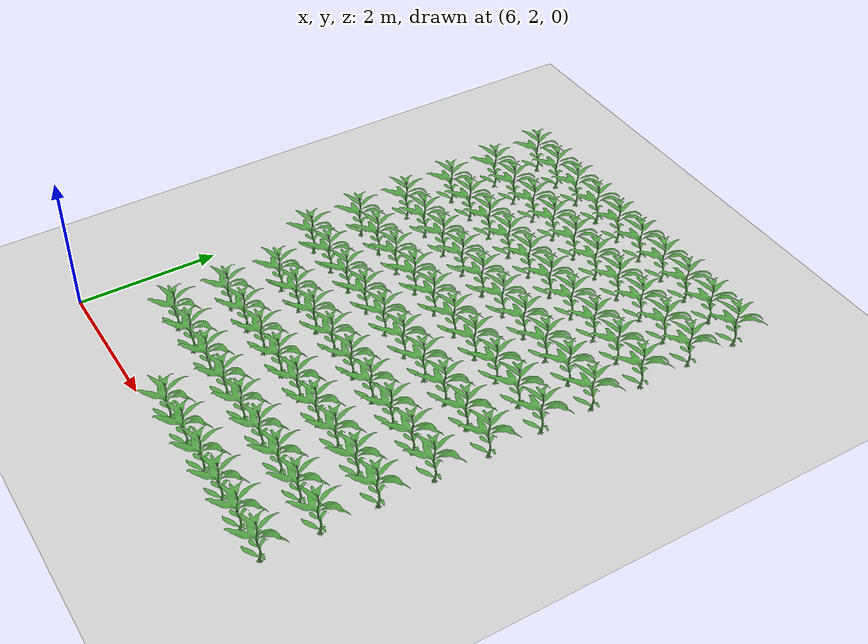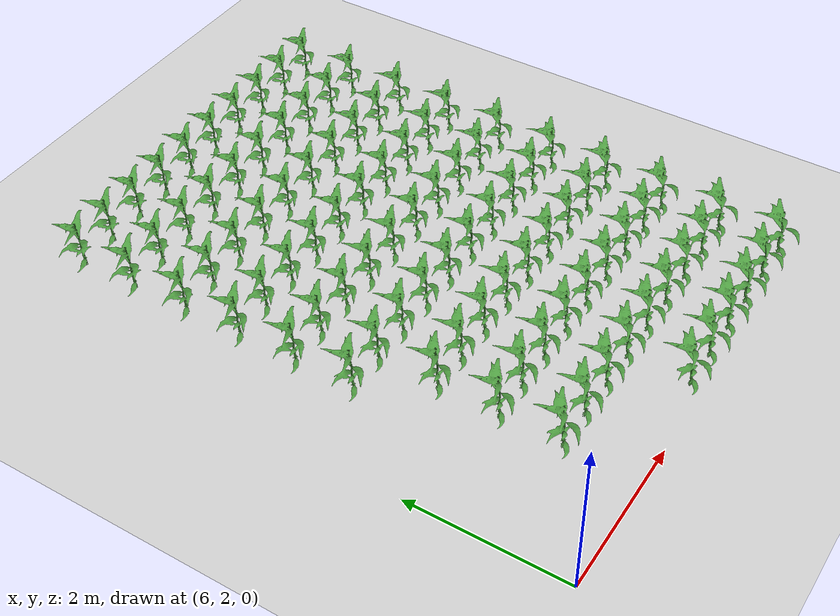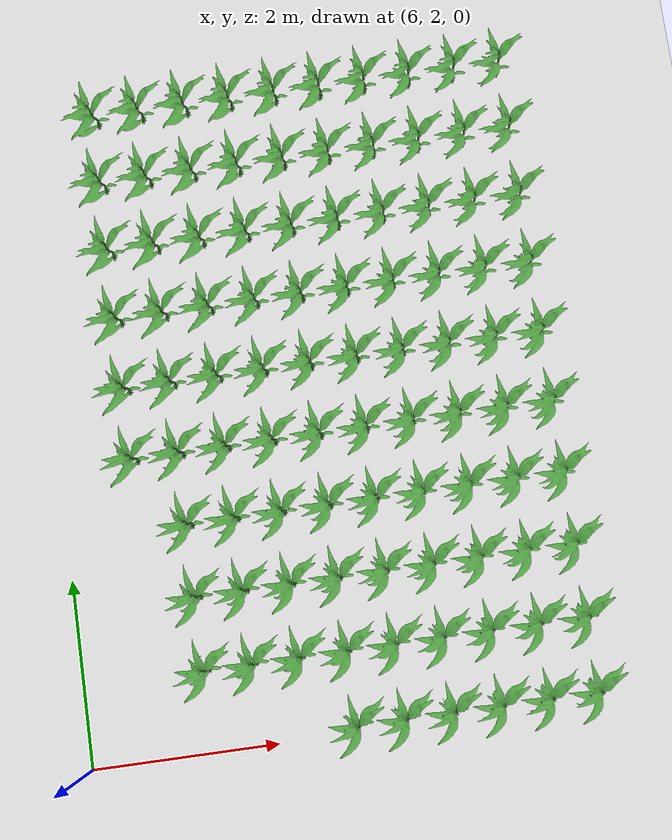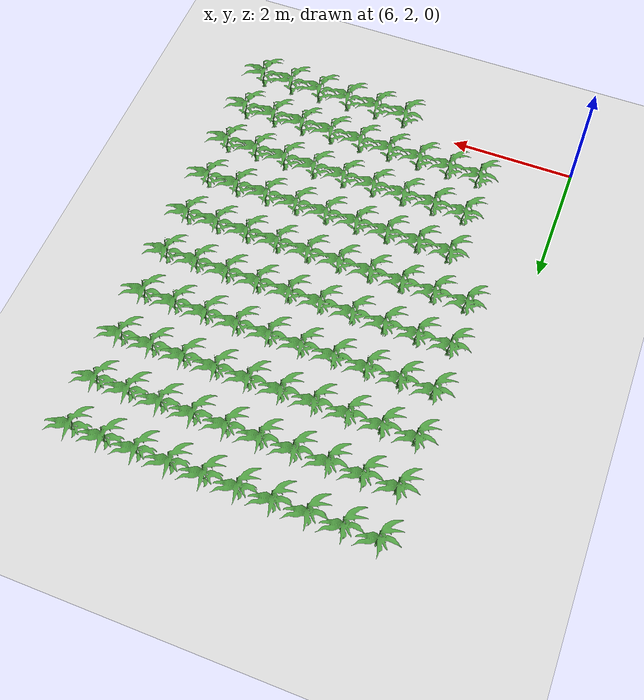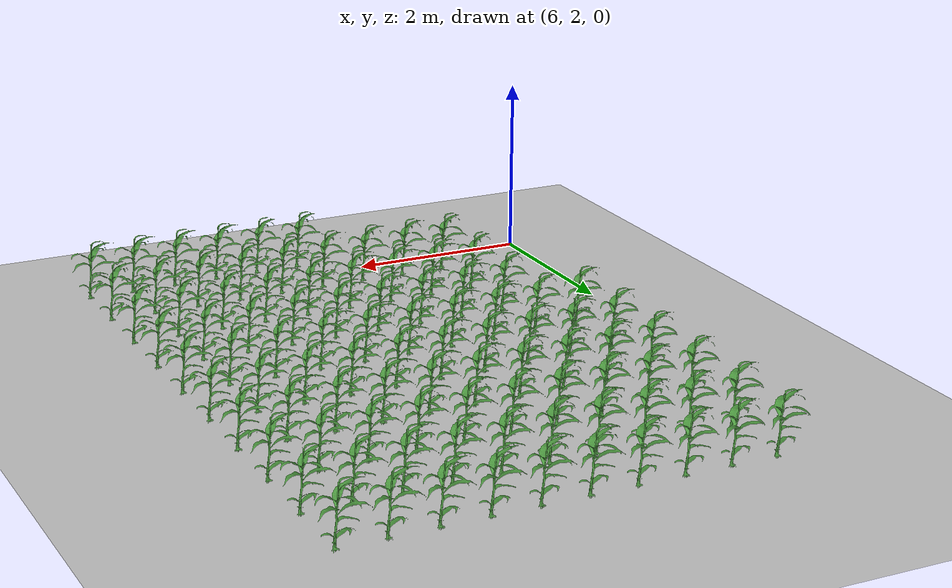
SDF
<sdf version="1.7">
 <world name="default">
  <model name="ground_plane">
   <static>1</static>
   <link name="link">
    <collision name="collision">
     <geometry><plane><normal>0 0 1</normal><size>100 100</size></plane></geometry>
     <surface>
      <contact><collide_bitmask>65535</collide_bitmask></contact>
      <friction><ode><mu>100</mu><mu2>50</mu2></ode></friction>
     </surface>
    </collision>
    <visual name="visual">
     <cast_shadows>0</cast_shadows>
     <geometry><plane><normal>0 0 1</normal><size>100 100</size></plane></geometry>
     <material>
      <script><uri>file://media/materials/scripts/gazebo.material</uri><name>Gazebo/Grey</name></script>
     </material>
    </visual>
   </link>
  </model>
  <model name="bush_1_nc_174">
   <static>1</static>
   <link name="link">
    <visual name="visual">
     <geometry>
      <mesh><uri>model://corn_stalk/meshes/corn_1.obj</uri><scale>0.002 0.002 0.001</scale></mesh>
     </geometry>
     <material>
      <script><uri>file://media/materials/scripts/gazebo.material</uri><name>Gazebo/Grass</name></script>
     </material>
    </visual>
   </link>
   <pose>7.0 3.81 0.171977 0 -0 0</pose>
  </model>
  <model name="bush_1_nc_175">
   <static>1</static>
   <link name="link">
    <visual name="visual">
     <geometry>
      <mesh><uri>model://corn_stalk/meshes/corn_1.obj</uri><scale>0.002 0.002 0.001</scale></mesh>
     </geometry>
     <material>
      <script><uri>file://media/materials/scripts/gazebo.material</uri><name>Gazebo/Grass</name></script>
     </material>
    </visual>
   </link>
   <pose>7.5 3.81 0.171977 0 -0 0</pose>
  </model>
  <model name="bush_1_nc_176">
   <static>1</static>
   <link name="link">
    <visual name="visual">
     <geometry>
      <mesh><uri>model://corn_stalk/meshes/corn_1.obj</uri><scale>0.002 0.002 0.001</scale></mesh>
     </geometry>
     <material>
      <script><uri>file://media/materials/scripts/gazebo.material</uri><name>Gazebo/Grass</name></script>
     </material>
    </visual>
   </link>
   <pose>8.0 3.81 0.171977 0 -0 0</pose>
  </model>
  <model name="bush_1_nc_177">
   <static>1</static>
   <link name="link">
    <visual name="visual">
     <geometry>
      <mesh><uri>model://corn_stalk/meshes/corn_1.obj</uri><scale>0.002 0.002 0.001</scale></mesh>
     </geometry>
     <material>
      <script><uri>file://media/materials/scripts/gazebo.material</uri><name>Gazebo/Grass</name></script>
     </material>
    </visual>
   </link>
   <pose>8.5 3.81 0.171977 0 -0 0</pose>
  </model>
  <model name="bush_1_nc_178">
   <static>1</static>
   <link name="link">
    <visual name="visual">
     <geometry>
      <mesh><uri>model://corn_stalk/meshes/corn_1.obj</uri><scale>0.002 0.002 0.001</scale></mesh>
     </geometry>
     <material>
      <script><uri>file://media/materials/scripts/gazebo.material</uri><name>Gazebo/Grass</name></script>
     </material>
    </visual>
   </link>
   <pose>9.0 3.81 0.171977 0 -0 0</pose>
  </model>
  <model name="bush_1_nc_179">
   <static>1</static>
   <link name="link">
    <visual name="visual">
     <geometry>
      <mesh><uri>model://corn_stalk/meshes/corn_1.obj</uri><scale>0.002 0.002 0.001</scale></mesh>
     </geometry>
     <material>
      <script><uri>file://media/materials/scripts/gazebo.material</uri><name>Gazebo/Grass</name></script>
     </material>
    </visual>
   </link>
   <pose>9.5 3.81 0.171977 0 -0 0</pose>
  </model>
  <model name="bush_1_nc_211">
   <static>1</static>
   <link name="link">
    <visual name="visual">
     <geometry>
      <mesh><uri>model://corn_stalk/meshes/corn_1.obj</uri><scale>0.002 0.002 0.001</scale></mesh>
     </geometry>
     <material>
      <script><uri>file://media/materials/scripts/gazebo.material</uri><name>Gazebo/Grass</name></script>
     </material>
    </visual>
   </link>
   <pose>5.5 4.572 0.171977 0 -0 0</pose>
  </model>
  <model name="bush_1_nc_212">
   <static>1</static>
   <link name="link">
    <visual name="visual">
     <geometry>
      <mesh><uri>model://corn_stalk/meshes/corn_1.obj</uri><scale>0.002 0.002 0.001</scale></mesh>
     </geometry>
     <material>
      <script><uri>file://media/materials/scripts/gazebo.material</uri><name>Gazebo/Grass</name></script>
     </material>
    </visual>
   </link>
   <pose>6.0 4.572 0.171977 0 -0 0</pose>
  </model>
  <model name="bush_1_nc_213">
   <static>1</static>
   <link name="link">
    <visual name="visual">
     <geometry>
      <mesh><uri>model://corn_stalk/meshes/corn_1.obj</uri><scale>0.002 0.002 0.001</scale></mesh>
     </geometry>
     <material>
      <script><uri>file://media/materials/scripts/gazebo.material</uri><name>Gazebo/Grass</name></script>
     </material>
    </visual>
   </link>
   <pose>6.5 4.572 0.171977 0 -0 0</pose>
  </model>
  <model name="bush_1_nc_214">
   <static>1</static>
   <link name="link">
    <visual name="visual">
     <geometry>
      <mesh><uri>model://corn_stalk/meshes/corn_1.obj</uri><scale>0.002 0.002 0.001</scale></mesh>
     </geometry>
     <material>
      <script><uri>file://media/materials/scripts/gazebo.material</uri><name>Gazebo/Grass</name></script>
     </material>
    </visual>
   </link>
   <pose>7.0 4.572 0.171977 0 -0 0</pose>
  </model>
  <model name="bush_1_nc_215">
   <static>1</static>
   <link name="link">
    <visual name="visual">
     <geometry>
      <mesh><uri>model://corn_stalk/meshes/corn_1.obj</uri><scale>0.002 0.002 0.001</scale></mesh>
     </geometry>
     <material>
      <script><uri>file://media/materials/scripts/gazebo.material</uri><name>Gazebo/Grass</name></script>
     </material>
    </visual>
   </link>
   <pose>7.5 4.572 0.171977 0 -0 0</pose>
  </model>
  <model name="bush_1_nc_216">
   <static>1</static>
   <link name="link">
    <visual name="visual">
     <geometry>
      <mesh><uri>model://corn_stalk/meshes/corn_1.obj</uri><scale>0.002 0.002 0.001</scale></mesh>
     </geometry>
     <material>
      <script><uri>file://media/materials/scripts/gazebo.material</uri><name>Gazebo/Grass</name></script>
     </material>
    </visual>
   </link>
   <pose>8.0 4.572 0.171977 0 -0 0</pose>
  </model>
  <model name="bush_1_nc_217">
   <static>1</static>
   <link name="link">
    <visual name="visual">
     <geometry>
      <mesh><uri>model://corn_stalk/meshes/corn_1.obj</uri><scale>0.002 0.002 0.001</scale></mesh>
     </geometry>
     <material>
      <script><uri>file://media/materials/scripts/gazebo.material</uri><name>Gazebo/Grass</name></script>
     </material>
    </visual>
   </link>
   <pose>8.5 4.572 0.171977 0 -0 0</pose>
  </model>
  <model name="bush_1_nc_218">
   <static>1</static>
   <link name="link">
    <visual name="visual">
     <geometry>
      <mesh><uri>model://corn_stalk/meshes/corn_1.obj</uri><scale>0.002 0.002 0.001</scale></mesh>
     </geometry>
     <material>
      <script><uri>file://media/materials/scripts/gazebo.material</uri><name>Gazebo/Grass</name></script>
     </material>
    </visual>
   </link>
   <pose>9.0 4.572 0.171977 0 -0 0</pose>
  </model>
  <model name="bush_1_nc_219">
   <static>1</static>
   <link name="link">
    <visual name="visual">
     <geometry>
      <mesh><uri>model://corn_stalk/meshes/corn_1.obj</uri><scale>0.002 0.002 0.001</scale></mesh>
     </geometry>
     <material>
      <script><uri>file://media/materials/scripts/gazebo.material</uri><name>Gazebo/Grass</name></script>
     </material>
    </visual>
   </link>
   <pose>9.5 4.572 0.171977 0 -0 0</pose>
  </model>
  <model name="bush_1_nc_251">
   <static>1</static>
   <link name="link">
    <visual name="visual">
     <geometry>
      <mesh><uri>model://corn_stalk/meshes/corn_1.obj</uri><scale>0.002 0.002 0.001</scale></mesh>
     </geometry>
     <material>
      <script><uri>file://media/materials/scripts/gazebo.material</uri><name>Gazebo/Grass</name></script>
     </material>
    </visual>
   </link>
   <pose>5.5 5.334 0.171977 0 -0 0</pose>
  </model>
  <model name="bush_1_nc_252">
   <static>1</static>
   <link name="link">
    <visual name="visual">
     <geometry>
      <mesh><uri>model://corn_stalk/meshes/corn_1.obj</uri><scale>0.002 0.002 0.001</scale></mesh>
     </geometry>
     <material>
      <script><uri>file://media/materials/scripts/gazebo.material</uri><name>Gazebo/Grass</name></script>
     </material>
    </visual>
   </link>
   <pose>6.0 5.334 0.171977 0 -0 0</pose>
  </model>
  <model name="bush_1_nc_253">
   <static>1</static>
   <link name="link">
    <visual name="visual">
     <geometry>
      <mesh><uri>model://corn_stalk/meshes/corn_1.obj</uri><scale>0.002 0.002 0.001</scale></mesh>
     </geometry>
     <material>
      <script><uri>file://media/materials/scripts/gazebo.material</uri><name>Gazebo/Grass</name></script>
     </material>
    </visual>
   </link>
   <pose>6.5 5.334 0.171977 0 -0 0</pose>
  </model>
  <model name="bush_1_nc_254">
   <static>1</static>
   <link name="link">
    <visual name="visual">
     <geometry>
      <mesh><uri>model://corn_stalk/meshes/corn_1.obj</uri><scale>0.002 0.002 0.001</scale></mesh>
     </geometry>
     <material>
      <script><uri>file://media/materials/scripts/gazebo.material</uri><name>Gazebo/Grass</name></script>
     </material>
    </visual>
   </link>
   <pose>7.0 5.334 0.171977 0 -0 0</pose>
  </model>
  <model name="bush_1_nc_255">
   <static>1</static>
   <link name="link">
    <visual name="visual">
     <geometry>
      <mesh><uri>model://corn_stalk/meshes/corn_1.obj</uri><scale>0.002 0.002 0.001</scale></mesh>
     </geometry>
     <material>
      <script><uri>file://media/materials/scripts/gazebo.material</uri><name>Gazebo/Grass</name></script>
     </material>
    </visual>
   </link>
   <pose>7.5 5.334 0.171977 0 -0 0</pose>
  </model>
  <model name="bush_1_nc_256">
   <static>1</static>
   <link name="link">
    <visual name="visual">
     <geometry>
      <mesh><uri>model://corn_stalk/meshes/corn_1.obj</uri><scale>0.002 0.002 0.001</scale></mesh>
     </geometry>
     <material>
      <script><uri>file://media/materials/scripts/gazebo.material</uri><name>Gazebo/Grass</name></script>
     </material>
    </visual>
   </link>
   <pose>8.0 5.334 0.171977 0 -0 0</pose>
  </model>
  <model name="bush_1_nc_257">
   <static>1</static>
   <link name="link">
    <visual name="visual">
     <geometry>
      <mesh><uri>model://corn_stalk/meshes/corn_1.obj</uri><scale>0.002 0.002 0.001</scale></mesh>
     </geometry>
     <material>
      <script><uri>file://media/materials/scripts/gazebo.material</uri><name>Gazebo/Grass</name></script>
     </material>
    </visual>
   </link>
   <pose>8.5 5.334 0.171977 0 -0 0</pose>
  </model>
  <model name="bush_1_nc_258">
   <static>1</static>
   <link name="link">
    <visual name="visual">
     <geometry>
      <mesh><uri>model://corn_stalk/meshes/corn_1.obj</uri><scale>0.002 0.002 0.001</scale></mesh>
     </geometry>
     <material>
      <script><uri>file://media/materials/scripts/gazebo.material</uri><name>Gazebo/Grass</name></script>
     </material>
    </visual>
   </link>
   <pose>9.0 5.334 0.171977 0 -0 0</pose>
  </model>
  <model name="bush_1_nc_259">
   <static>1</static>
   <link name="link">
    <visual name="visual">
     <geometry>
      <mesh><uri>model://corn_stalk/meshes/corn_1.obj</uri><scale>0.002 0.002 0.001</scale></mesh>
     </geometry>
     <material>
      <script><uri>file://media/materials/scripts/gazebo.material</uri><name>Gazebo/Grass</name></script>
     </material>
    </visual>
   </link>
   <pose>9.5 5.334 0.171977 0 -0 0</pose>
  </model>
  <model name="bush_1_nc_291">
   <static>1</static>
   <link name="link">
    <visual name="visual">
     <geometry>
      <mesh><uri>model://corn_stalk/meshes/corn_1.obj</uri><scale>0.002 0.002 0.001</scale></mesh>
     </geometry>
     <material>
      <script><uri>file://media/materials/scripts/gazebo.material</uri><name>Gazebo/Grass</name></script>
     </material>
    </visual>
   </link>
   <pose>5.5 6.096 0.171977 0 -0 0</pose>
  </model>
  <model name="bush_1_nc_292">
   <static>1</static>
   <link name="link">
    <visual name="visual">
     <geometry>
      <mesh><uri>model://corn_stalk/meshes/corn_1.obj</uri><scale>0.002 0.002 0.001</scale></mesh>
     </geometry>
     <material>
      <script><uri>file://media/materials/scripts/gazebo.material</uri><name>Gazebo/Grass</name></script>
     </material>
    </visual>
   </link>
   <pose>6.0 6.096 0.171977 0 -0 0</pose>
  </model>
  <model name="bush_1_nc_293">
   <static>1</static>
   <link name="link">
    <visual name="visual">
     <geometry>
      <mesh><uri>model://corn_stalk/meshes/corn_1.obj</uri><scale>0.002 0.002 0.001</scale></mesh>
     </geometry>
     <material>
      <script><uri>file://media/materials/scripts/gazebo.material</uri><name>Gazebo/Grass</name></script>
     </material>
    </visual>
   </link>
   <pose>6.5 6.096 0.171977 0 -0 0</pose>
  </model>
  <model name="bush_1_nc_294">
   <static>1</static>
   <link name="link">
    <visual name="visual">
     <geometry>
      <mesh><uri>model://corn_stalk/meshes/corn_1.obj</uri><scale>0.002 0.002 0.001</scale></mesh>
     </geometry>
     <material>
      <script><uri>file://media/materials/scripts/gazebo.material</uri><name>Gazebo/Grass</name></script>
     </material>
    </visual>
   </link>
   <pose>7.0 6.096 0.171977 0 -0 0</pose>
  </model>
  <model name="bush_1_nc_295">
   <static>1</static>
   <link name="link">
    <visual name="visual">
     <geometry>
      <mesh><uri>model://corn_stalk/meshes/corn_1.obj</uri><scale>0.002 0.002 0.001</scale></mesh>
     </geometry>
     <material>
      <script><uri>file://media/materials/scripts/gazebo.material</uri><name>Gazebo/Grass</name></script>
     </material>
    </visual>
   </link>
   <pose>7.5 6.096 0.171977 0 -0 0</pose>
  </model>
  <model name="bush_1_nc_296">
   <static>1</static>
   <link name="link">
    <visual name="visual">
     <geometry>
      <mesh><uri>model://corn_stalk/meshes/corn_1.obj</uri><scale>0.002 0.002 0.001</scale></mesh>
     </geometry>
     <material>
      <script><uri>file://media/materials/scripts/gazebo.material</uri><name>Gazebo/Grass</name></script>
     </material>
    </visual>
   </link>
   <pose>8.0 6.096 0.171977 0 -0 0</pose>
  </model>
  <model name="bush_1_nc_297">
   <static>1</static>
   <link name="link">
    <visual name="visual">
     <geometry>
      <mesh><uri>model://corn_stalk/meshes/corn_1.obj</uri><scale>0.002 0.002 0.001</scale></mesh>
     </geometry>
     <material>
      <script><uri>file://media/materials/scripts/gazebo.material</uri><name>Gazebo/Grass</name></script>
     </material>
    </visual>
   </link>
   <pose>8.5 6.096 0.171977 0 -0 0</pose>
  </model>
  <model name="bush_1_nc_298">
   <static>1</static>
   <link name="link">
    <visual name="visual">
     <geometry>
      <mesh><uri>model://corn_stalk/meshes/corn_1.obj</uri><scale>0.002 0.002 0.001</scale></mesh>
     </geometry>
     <material>
      <script><uri>file://media/materials/scripts/gazebo.material</uri><name>Gazebo/Grass</name></script>
     </material>
    </visual>
   </link>
   <pose>9.0 6.096 0.171977 0 -0 0</pose>
  </model>
  <model name="bush_1_nc_299">
   <static>1</static>
   <link name="link">
    <visual name="visual">
     <geometry>
      <mesh><uri>model://corn_stalk/meshes/corn_1.obj</uri><scale>0.002 0.002 0.001</scale></mesh>
     </geometry>
     <material>
      <script><uri>file://media/materials/scripts/gazebo.material</uri><name>Gazebo/Grass</name></script>
     </material>
    </visual>
   </link>
   <pose>9.5 6.096 0.171977 0 -0 0</pose>
  </model>
  <model name="bush_1_nc_330">
   <static>1</static>
   <link name="link">
    <visual name="visual">
     <geometry>
      <mesh><uri>model://corn_stalk/meshes/corn_1.obj</uri><scale>0.002 0.002 0.001</scale></mesh>
     </geometry>
     <material>
      <script><uri>file://media/materials/scripts/gazebo.material</uri><name>Gazebo/Grass</name></script>
     </material>
    </visual>
   </link>
   <pose>5.0 6.8580000000000005 0.171977 0 -0 0</pose>
  </model>
  <model name="bush_1_nc_331">
   <static>1</static>
   <link name="link">
    <visual name="visual">
     <geometry>
      <mesh><uri>model://corn_stalk/meshes/corn_1.obj</uri><scale>0.002 0.002 0.001</scale></mesh>
     </geometry>
     <material>
      <script><uri>file://media/materials/scripts/gazebo.material</uri><name>Gazebo/Grass</name></script>
     </material>
    </visual>
   </link>
   <pose>5.5 6.8580000000000005 0.171977 0 -0 0</pose>
  </model>
  <model name="bush_1_nc_332">
   <static>1</static>
   <link name="link">
    <visual name="visual">
     <geometry>
      <mesh><uri>model://corn_stalk/meshes/corn_1.obj</uri><scale>0.002 0.002 0.001</scale></mesh>
     </geometry>
     <material>
      <script><uri>file://media/materials/scripts/gazebo.material</uri><name>Gazebo/Grass</name></script>
     </material>
    </visual>
   </link>
   <pose>6.0 6.8580000000000005 0.171977 0 -0 0</pose>
  </model>
  <model name="bush_1_nc_333">
   <static>1</static>
   <link name="link">
    <visual name="visual">
     <geometry>
      <mesh><uri>model://corn_stalk/meshes/corn_1.obj</uri><scale>0.002 0.002 0.001</scale></mesh>
     </geometry>
     <material>
      <script><uri>file://media/materials/scripts/gazebo.material</uri><name>Gazebo/Grass</name></script>
     </material>
    </visual>
   </link>
   <pose>6.5 6.8580000000000005 0.171977 0 -0 0</pose>
  </model>
  <model name="bush_1_nc_334">
   <static>1</static>
   <link name="link">
    <visual name="visual">
     <geometry>
      <mesh><uri>model://corn_stalk/meshes/corn_1.obj</uri><scale>0.002 0.002 0.001</scale></mesh>
     </geometry>
     <material>
      <script><uri>file://media/materials/scripts/gazebo.material</uri><name>Gazebo/Grass</name></script>
     </material>
    </visual>
   </link>
   <pose>7.0 6.8580000000000005 0.171977 0 -0 0</pose>
  </model>
  <model name="bush_1_nc_335">
   <static>1</static>
   <link name="link">
    <visual name="visual">
     <geometry>
      <mesh><uri>model://corn_stalk/meshes/corn_1.obj</uri><scale>0.002 0.002 0.001</scale></mesh>
     </geometry>
     <material>
      <script><uri>file://media/materials/scripts/gazebo.material</uri><name>Gazebo/Grass</name></script>
     </material>
    </visual>
   </link>
   <pose>7.5 6.8580000000000005 0.171977 0 -0 0</pose>
  </model>
  <model name="bush_1_nc_336">
   <static>1</static>
   <link name="link">
    <visual name="visual">
     <geometry>
      <mesh><uri>model://corn_stalk/meshes/corn_1.obj</uri><scale>0.002 0.002 0.001</scale></mesh>
     </geometry>
     <material>
      <script><uri>file://media/materials/scripts/gazebo.material</uri><name>Gazebo/Grass</name></script>
     </material>
    </visual>
   </link>
   <pose>8.0 6.8580000000000005 0.171977 0 -0 0</pose>
  </model>
  <model name="bush_1_nc_337">
   <static>1</static>
   <link name="link">
    <visual name="visual">
     <geometry>
      <mesh><uri>model://corn_stalk/meshes/corn_1.obj</uri><scale>0.002 0.002 0.001</scale></mesh>
     </geometry>
     <material>
      <script><uri>file://media/materials/scripts/gazebo.material</uri><name>Gazebo/Grass</name></script>
     </material>
    </visual>
   </link>
   <pose>8.5 6.8580000000000005 0.171977 0 -0 0</pose>
  </model>
  <model name="bush_1_nc_338">
   <static>1</static>
   <link name="link">
    <visual name="visual">
     <geometry>
      <mesh><uri>model://corn_stalk/meshes/corn_1.obj</uri><scale>0.002 0.002 0.001</scale></mesh>
     </geometry>
     <material>
      <script><uri>file://media/materials/scripts/gazebo.material</uri><name>Gazebo/Grass</name></script>
     </material>
    </visual>
   </link>
   <pose>9.0 6.8580000000000005 0.171977 0 -0 0</pose>
  </model>
  <model name="bush_1_nc_339">
   <static>1</static>
   <link name="link">
    <visual name="visual">
     <geometry>
      <mesh><uri>model://corn_stalk/meshes/corn_1.obj</uri><scale>0.002 0.002 0.001</scale></mesh>
     </geometry>
     <material>
      <script><uri>file://media/materials/scripts/gazebo.material</uri><name>Gazebo/Grass</name></script>
     </material>
    </visual>
   </link>
   <pose>9.5 6.8580000000000005 0.171977 0 -0 0</pose>
  </model>
  <model name="bush_1_nc_370">
   <static>1</static>
   <link name="link">
    <visual name="visual">
     <geometry>
      <mesh><uri>model://corn_stalk/meshes/corn_1.obj</uri><scale>0.002 0.002 0.001</scale></mesh>
     </geometry>
     <material>
      <script><uri>file://media/materials/scripts/gazebo.material</uri><name>Gazebo/Grass</name></script>
     </material>
    </visual>
   </link>
   <pose>5.0 7.62 0.171977 0 -0 0</pose>
  </model>
  <model name="bush_1_nc_371">
   <static>1</static>
   <link name="link">
    <visual name="visual">
     <geometry>
      <mesh><uri>model://corn_stalk/meshes/corn_1.obj</uri><scale>0.002 0.002 0.001</scale></mesh>
     </geometry>
     <material>
      <script><uri>file://media/materials/scripts/gazebo.material</uri><name>Gazebo/Grass</name></script>
     </material>
    </visual>
   </link>
   <pose>5.5 7.62 0.171977 0 -0 0</pose>
  </model>
  <model name="bush_1_nc_372">
   <static>1</static>
   <link name="link">
    <visual name="visual">
     <geometry>
      <mesh><uri>model://corn_stalk/meshes/corn_1.obj</uri><scale>0.002 0.002 0.001</scale></mesh>
     </geometry>
     <material>
      <script><uri>file://media/materials/scripts/gazebo.material</uri><name>Gazebo/Grass</name></script>
     </material>
    </visual>
   </link>
   <pose>6.0 7.62 0.171977 0 -0 0</pose>
  </model>
  <model name="bush_1_nc_373">
   <static>1</static>
   <link name="link">
    <visual name="visual">
     <geometry>
      <mesh><uri>model://corn_stalk/meshes/corn_1.obj</uri><scale>0.002 0.002 0.001</scale></mesh>
     </geometry>
     <material>
      <script><uri>file://media/materials/scripts/gazebo.material</uri><name>Gazebo/Grass</name></script>
     </material>
    </visual>
   </link>
   <pose>6.5 7.62 0.171977 0 -0 0</pose>
  </model>
  <model name="bush_1_nc_374">
   <static>1</static>
   <link name="link">
    <visual name="visual">
     <geometry>
      <mesh><uri>model://corn_stalk/meshes/corn_1.obj</uri><scale>0.002 0.002 0.001</scale></mesh>
     </geometry>
     <material>
      <script><uri>file://media/materials/scripts/gazebo.material</uri><name>Gazebo/Grass</name></script>
     </material>
    </visual>
   </link>
   <pose>7.0 7.62 0.171977 0 -0 0</pose>
  </model>
  <model name="bush_1_nc_375">
   <static>1</static>
   <link name="link">
    <visual name="visual">
     <geometry>
      <mesh><uri>model://corn_stalk/meshes/corn_1.obj</uri><scale>0.002 0.002 0.001</scale></mesh>
     </geometry>
     <material>
      <script><uri>file://media/materials/scripts/gazebo.material</uri><name>Gazebo/Grass</name></script>
     </material>
    </visual>
   </link>
   <pose>7.5 7.62 0.171977 0 -0 0</pose>
  </model>
  <model name="bush_1_nc_376">
   <static>1</static>
   <link name="link">
    <visual name="visual">
     <geometry>
      <mesh><uri>model://corn_stalk/meshes/corn_1.obj</uri><scale>0.002 0.002 0.001</scale></mesh>
     </geometry>
     <material>
      <script><uri>file://media/materials/scripts/gazebo.material</uri><name>Gazebo/Grass</name></script>
     </material>
    </visual>
   </link>
   <pose>8.0 7.62 0.171977 0 -0 0</pose>
  </model>
  <model name="bush_1_nc_377">
   <static>1</static>
   <link name="link">
    <visual name="visual">
     <geometry>
      <mesh><uri>model://corn_stalk/meshes/corn_1.obj</uri><scale>0.002 0.002 0.001</scale></mesh>
     </geometry>
     <material>
      <script><uri>file://media/materials/scripts/gazebo.material</uri><name>Gazebo/Grass</name></script>
     </material>
    </visual>
   </link>
   <pose>8.5 7.62 0.171977 0 -0 0</pose>
  </model>
  <model name="bush_1_nc_378">
   <static>1</static>
   <link name="link">
    <visual name="visual">
     <geometry>
      <mesh><uri>model://corn_stalk/meshes/corn_1.obj</uri><scale>0.002 0.002 0.001</scale></mesh>
     </geometry>
     <material>
      <script><uri>file://media/materials/scripts/gazebo.material</uri><name>Gazebo/Grass</name></script>
     </material>
    </visual>
   </link>
   <pose>9.0 7.62 0.171977 0 -0 0</pose>
  </model>
  <model name="bush_1_nc_379">
   <static>1</static>
   <link name="link">
    <visual name="visual">
     <geometry>
      <mesh><uri>model://corn_stalk/meshes/corn_1.obj</uri><scale>0.002 0.002 0.001</scale></mesh>
     </geometry>
     <material>
      <script><uri>file://media/materials/scripts/gazebo.material</uri><name>Gazebo/Grass</name></script>
     </material>
    </visual>
   </link>
   <pose>9.5 7.62 0.171977 0 -0 0</pose>
  </model>
  <model name="bush_1_nc_410">
   <static>1</static>
   <link name="link">
    <visual name="visual">
     <geometry>
      <mesh><uri>model://corn_stalk/meshes/corn_1.obj</uri><scale>0.002 0.002 0.001</scale></mesh>
     </geometry>
     <material>
      <script><uri>file://media/materials/scripts/gazebo.material</uri><name>Gazebo/Grass</name></script>
     </material>
    </visual>
   </link>
   <pose>5.0 8.382 0.171977 0 -0 0</pose>
  </model>
  <model name="bush_1_nc_411">
   <static>1</static>
   <link name="link">
    <visual name="visual">
     <geometry>
      <mesh><uri>model://corn_stalk/meshes/corn_1.obj</uri><scale>0.002 0.002 0.001</scale></mesh>
     </geometry>
     <material>
      <script><uri>file://media/materials/scripts/gazebo.material</uri><name>Gazebo/Grass</name></script>
     </material>
    </visual>
   </link>
   <pose>5.5 8.382 0.171977 0 -0 0</pose>
  </model>
  <model name="bush_1_nc_412">
   <static>1</static>
   <link name="link">
    <visual name="visual">
     <geometry>
      <mesh><uri>model://corn_stalk/meshes/corn_1.obj</uri><scale>0.002 0.002 0.001</scale></mesh>
     </geometry>
     <material>
      <script><uri>file://media/materials/scripts/gazebo.material</uri><name>Gazebo/Grass</name></script>
     </material>
    </visual>
   </link>
   <pose>6.0 8.382 0.171977 0 -0 0</pose>
  </model>
  <model name="bush_1_nc_413">
   <static>1</static>
   <link name="link">
    <visual name="visual">
     <geometry>
      <mesh><uri>model://corn_stalk/meshes/corn_1.obj</uri><scale>0.002 0.002 0.001</scale></mesh>
     </geometry>
     <material>
      <script><uri>file://media/materials/scripts/gazebo.material</uri><name>Gazebo/Grass</name></script>
     </material>
    </visual>
   </link>
   <pose>6.5 8.382 0.171977 0 -0 0</pose>
  </model>
  <model name="bush_1_nc_414">
   <static>1</static>
   <link name="link">
    <visual name="visual">
     <geometry>
      <mesh><uri>model://corn_stalk/meshes/corn_1.obj</uri><scale>0.002 0.002 0.001</scale></mesh>
     </geometry>
     <material>
      <script><uri>file://media/materials/scripts/gazebo.material</uri><name>Gazebo/Grass</name></script>
     </material>
    </visual>
   </link>
   <pose>7.0 8.382 0.171977 0 -0 0</pose>
  </model>
  <model name="bush_1_nc_415">
   <static>1</static>
   <link name="link">
    <visual name="visual">
     <geometry>
      <mesh><uri>model://corn_stalk/meshes/corn_1.obj</uri><scale>0.002 0.002 0.001</scale></mesh>
     </geometry>
     <material>
      <script><uri>file://media/materials/scripts/gazebo.material</uri><name>Gazebo/Grass</name></script>
     </material>
    </visual>
   </link>
   <pose>7.5 8.382 0.171977 0 -0 0</pose>
  </model>
  <model name="bush_1_nc_416">
   <static>1</static>
   <link name="link">
    <visual name="visual">
     <geometry>
      <mesh><uri>model://corn_stalk/meshes/corn_1.obj</uri><scale>0.002 0.002 0.001</scale></mesh>
     </geometry>
     <material>
      <script><uri>file://media/materials/scripts/gazebo.material</uri><name>Gazebo/Grass</name></script>
     </material>
    </visual>
   </link>
   <pose>8.0 8.382 0.171977 0 -0 0</pose>
  </model>
  <model name="bush_1_nc_417">
   <static>1</static>
   <link name="link">
    <visual name="visual">
     <geometry>
      <mesh><uri>model://corn_stalk/meshes/corn_1.obj</uri><scale>0.002 0.002 0.001</scale></mesh>
     </geometry>
     <material>
      <script><uri>file://media/materials/scripts/gazebo.material</uri><name>Gazebo/Grass</name></script>
     </material>
    </visual>
   </link>
   <pose>8.5 8.382 0.171977 0 -0 0</pose>
  </model>
  <model name="bush_1_nc_418">
   <static>1</static>
   <link name="link">
    <visual name="visual">
     <geometry>
      <mesh><uri>model://corn_stalk/meshes/corn_1.obj</uri><scale>0.002 0.002 0.001</scale></mesh>
     </geometry>
     <material>
      <script><uri>file://media/materials/scripts/gazebo.material</uri><name>Gazebo/Grass</name></script>
     </material>
    </visual>
   </link>
   <pose>9.0 8.382 0.171977 0 -0 0</pose>
  </model>
  <model name="bush_1_nc_419">
   <static>1</static>
   <link name="link">
    <visual name="visual">
     <geometry>
      <mesh><uri>model://corn_stalk/meshes/corn_1.obj</uri><scale>0.002 0.002 0.001</scale></mesh>
     </geometry>
     <material>
      <script><uri>file://media/materials/scripts/gazebo.material</uri><name>Gazebo/Grass</name></script>
     </material>
    </visual>
   </link>
   <pose>9.5 8.382 0.171977 0 -0 0</pose>
  </model>
  <model name="bush_1_nc_450">
   <static>1</static>
   <link name="link">
    <visual name="visual">
     <geometry>
      <mesh><uri>model://corn_stalk/meshes/corn_1.obj</uri><scale>0.002 0.002 0.001</scale></mesh>
     </geometry>
     <material>
      <script><uri>file://media/materials/scripts/gazebo.material</uri><name>Gazebo/Grass</name></script>
     </material>
    </visual>
   </link>
   <pose>5.0 9.144 0.171977 0 -0 0</pose>
  </model>
  <model name="bush_1_nc_451">
   <static>1</static>
   <link name="link">
    <visual name="visual">
     <geometry>
      <mesh><uri>model://corn_stalk/meshes/corn_1.obj</uri><scale>0.002 0.002 0.001</scale></mesh>
     </geometry>
     <material>
      <script><uri>file://media/materials/scripts/gazebo.material</uri><name>Gazebo/Grass</name></script>
     </material>
    </visual>
   </link>
   <pose>5.5 9.144 0.171977 0 -0 0</pose>
  </model>
  <model name="bush_1_nc_452">
   <static>1</static>
   <link name="link">
    <visual name="visual">
     <geometry>
      <mesh><uri>model://corn_stalk/meshes/corn_1.obj</uri><scale>0.002 0.002 0.001</scale></mesh>
     </geometry>
     <material>
      <script><uri>file://media/materials/scripts/gazebo.material</uri><name>Gazebo/Grass</name></script>
     </material>
    </visual>
   </link>
   <pose>6.0 9.144 0.171977 0 -0 0</pose>
  </model>
  <model name="bush_1_nc_453">
   <static>1</static>
   <link name="link">
    <visual name="visual">
     <geometry>
      <mesh><uri>model://corn_stalk/meshes/corn_1.obj</uri><scale>0.002 0.002 0.001</scale></mesh>
     </geometry>
     <material>
      <script><uri>file://media/materials/scripts/gazebo.material</uri><name>Gazebo/Grass</name></script>
     </material>
    </visual>
   </link>
   <pose>6.5 9.144 0.171977 0 -0 0</pose>
  </model>
  <model name="bush_1_nc_454">
   <static>1</static>
   <link name="link">
    <visual name="visual">
     <geometry>
      <mesh><uri>model://corn_stalk/meshes/corn_1.obj</uri><scale>0.002 0.002 0.001</scale></mesh>
     </geometry>
     <material>
      <script><uri>file://media/materials/scripts/gazebo.material</uri><name>Gazebo/Grass</name></script>
     </material>
    </visual>
   </link>
   <pose>7.0 9.144 0.171977 0 -0 0</pose>
  </model>
  <model name="bush_1_nc_455">
   <static>1</static>
   <link name="link">
    <visual name="visual">
     <geometry>
      <mesh><uri>model://corn_stalk/meshes/corn_1.obj</uri><scale>0.002 0.002 0.001</scale></mesh>
     </geometry>
     <material>
      <script><uri>file://media/materials/scripts/gazebo.material</uri><name>Gazebo/Grass</name></script>
     </material>
    </visual>
   </link>
   <pose>7.5 9.144 0.171977 0 -0 0</pose>
  </model>
  <model name="bush_1_nc_456">
   <static>1</static>
   <link name="link">
    <visual name="visual">
     <geometry>
      <mesh><uri>model://corn_stalk/meshes/corn_1.obj</uri><scale>0.002 0.002 0.001</scale></mesh>
     </geometry>
     <material>
      <script><uri>file://media/materials/scripts/gazebo.material</uri><name>Gazebo/Grass</name></script>
     </material>
    </visual>
   </link>
   <pose>8.0 9.144 0.171977 0 -0 0</pose>
  </model>
  <model name="bush_1_nc_457">
   <static>1</static>
   <link name="link">
    <visual name="visual">
     <geometry>
      <mesh><uri>model://corn_stalk/meshes/corn_1.obj</uri><scale>0.002 0.002 0.001</scale></mesh>
     </geometry>
     <material>
      <script><uri>file://media/materials/scripts/gazebo.material</uri><name>Gazebo/Grass</name></script>
     </material>
    </visual>
   </link>
   <pose>8.5 9.144 0.171977 0 -0 0</pose>
  </model>
  <model name="bush_1_nc_458">
   <static>1</static>
   <link name="link">
    <visual name="visual">
     <geometry>
      <mesh><uri>model://corn_stalk/meshes/corn_1.obj</uri><scale>0.002 0.002 0.001</scale></mesh>
     </geometry>
     <material>
      <script><uri>file://media/materials/scripts/gazebo.material</uri><name>Gazebo/Grass</name></script>
     </material>
    </visual>
   </link>
   <pose>9.0 9.144 0.171977 0 -0 0</pose>
  </model>
  <model name="bush_1_nc_459">
   <static>1</static>
   <link name="link">
    <visual name="visual">
     <geometry>
      <mesh><uri>model://corn_stalk/meshes/corn_1.obj</uri><scale>0.002 0.002 0.001</scale></mesh>
     </geometry>
     <material>
      <script><uri>file://media/materials/scripts/gazebo.material</uri><name>Gazebo/Grass</name></script>
     </material>
    </visual>
   </link>
   <pose>9.5 9.144 0.171977 0 -0 0</pose>
  </model>
  <model name="bush_1_nc_490">
   <static>1</static>
   <link name="link">
    <visual name="visual">
     <geometry>
      <mesh><uri>model://corn_stalk/meshes/corn_1.obj</uri><scale>0.002 0.002 0.001</scale></mesh>
     </geometry>
     <material>
      <script><uri>file://media/materials/scripts/gazebo.material</uri><name>Gazebo/Grass</name></script>
     </material>
    </visual>
   </link>
   <pose>5.0 9.906 0.171977 0 -0 0</pose>
  </model>
  <model name="bush_1_nc_491">
   <static>1</static>
   <link name="link">
    <visual name="visual">
     <geometry>
      <mesh><uri>model://corn_stalk/meshes/corn_1.obj</uri><scale>0.002 0.002 0.001</scale></mesh>
     </geometry>
     <material>
      <script><uri>file://media/materials/scripts/gazebo.material</uri><name>Gazebo/Grass</name></script>
     </material>
    </visual>
   </link>
   <pose>5.5 9.906 0.171977 0 -0 0</pose>
  </model>
  <model name="bush_1_nc_492">
   <static>1</static>
   <link name="link">
    <visual name="visual">
     <geometry>
      <mesh><uri>model://corn_stalk/meshes/corn_1.obj</uri><scale>0.002 0.002 0.001</scale></mesh>
     </geometry>
     <material>
      <script><uri>file://media/materials/scripts/gazebo.material</uri><name>Gazebo/Grass</name></script>
     </material>
    </visual>
   </link>
   <pose>6.0 9.906 0.171977 0 -0 0</pose>
  </model>
  <model name="bush_1_nc_493">
   <static>1</static>
   <link name="link">
    <visual name="visual">
     <geometry>
      <mesh><uri>model://corn_stalk/meshes/corn_1.obj</uri><scale>0.002 0.002 0.001</scale></mesh>
     </geometry>
     <material>
      <script><uri>file://media/materials/scripts/gazebo.material</uri><name>Gazebo/Grass</name></script>
     </material>
    </visual>
   </link>
   <pose>6.5 9.906 0.171977 0 -0 0</pose>
  </model>
  <model name="bush_1_nc_494">
   <static>1</static>
   <link name="link">
    <visual name="visual">
     <geometry>
      <mesh><uri>model://corn_stalk/meshes/corn_1.obj</uri><scale>0.002 0.002 0.001</scale></mesh>
     </geometry>
     <material>
      <script><uri>file://media/materials/scripts/gazebo.material</uri><name>Gazebo/Grass</name></script>
     </material>
    </visual>
   </link>
   <pose>7.0 9.906 0.171977 0 -0 0</pose>
  </model>
  <model name="bush_1_nc_495">
   <static>1</static>
   <link name="link">
    <visual name="visual">
     <geometry>
      <mesh><uri>model://corn_stalk/meshes/corn_1.obj</uri><scale>0.002 0.002 0.001</scale></mesh>
     </geometry>
     <material>
      <script><uri>file://media/materials/scripts/gazebo.material</uri><name>Gazebo/Grass</name></script>
     </material>
    </visual>
   </link>
   <pose>7.5 9.906 0.171977 0 -0 0</pose>
  </model>
  <model name="bush_1_nc_496">
   <static>1</static>
   <link name="link">
    <visual name="visual">
     <geometry>
      <mesh><uri>model://corn_stalk/meshes/corn_1.obj</uri><scale>0.002 0.002 0.001</scale></mesh>
     </geometry>
     <material>
      <script><uri>file://media/materials/scripts/gazebo.material</uri><name>Gazebo/Grass</name></script>
     </material>
    </visual>
   </link>
   <pose>8.0 9.906 0.171977 0 -0 0</pose>
  </model>
  <model name="bush_1_nc_497">
   <static>1</static>
   <link name="link">
    <visual name="visual">
     <geometry>
      <mesh><uri>model://corn_stalk/meshes/corn_1.obj</uri><scale>0.002 0.002 0.001</scale></mesh>
     </geometry>
     <material>
      <script><uri>file://media/materials/scripts/gazebo.material</uri><name>Gazebo/Grass</name></script>
     </material>
    </visual>
   </link>
   <pose>8.5 9.906 0.171977 0 -0 0</pose>
  </model>
  <model name="bush_1_nc_498">
   <static>1</static>
   <link name="link">
    <visual name="visual">
     <geometry>
      <mesh><uri>model://corn_stalk/meshes/corn_1.obj</uri><scale>0.002 0.002 0.001</scale></mesh>
     </geometry>
     <material>
      <script><uri>file://media/materials/scripts/gazebo.material</uri><name>Gazebo/Grass</name></script>
     </material>
    </visual>
   </link>
   <pose>9.0 9.906 0.171977 0 -0 0</pose>
  </model>
  <model name="bush_1_nc_499">
   <static>1</static>
   <link name="link">
    <visual name="visual">
     <geometry>
      <mesh><uri>model://corn_stalk/meshes/corn_1.obj</uri><scale>0.002 0.002 0.001</scale></mesh>
     </geometry>
     <material>
      <script><uri>file://media/materials/scripts/gazebo.material</uri><name>Gazebo/Grass</name></script>
     </material>
    </visual>
   </link>
   <pose>9.5 9.906 0.171977 0 -0 0</pose>
  </model>
  <model name="bush_1_nc_530">
   <static>1</static>
   <link name="link">
    <visual name="visual">
     <geometry>
      <mesh><uri>model://corn_stalk/meshes/corn_1.obj</uri><scale>0.002 0.002 0.001</scale></mesh>
     </geometry>
     <material>
      <script><uri>file://media/materials/scripts/gazebo.material</uri><name>Gazebo/Grass</name></script>
     </material>
    </visual>
   </link>
   <pose>5.0 10.668 0.171977 0 -0 0</pose>
  </model>
  <model name="bush_1_nc_531">
   <static>1</static>
   <link name="link">
    <visual name="visual">
     <geometry>
      <mesh><uri>model://corn_stalk/meshes/corn_1.obj</uri><scale>0.002 0.002 0.001</scale></mesh>
     </geometry>
     <material>
      <script><uri>file://media/materials/scripts/gazebo.material</uri><name>Gazebo/Grass</name></script>
     </material>
    </visual>
   </link>
   <pose>5.5 10.668 0.171977 0 -0 0</pose>
  </model>
  <model name="bush_1_nc_532">
   <static>1</static>
   <link name="link">
    <visual name="visual">
     <geometry>
      <mesh><uri>model://corn_stalk/meshes/corn_1.obj</uri><scale>0.002 0.002 0.001</scale></mesh>
     </geometry>
     <material>
      <script><uri>file://media/materials/scripts/gazebo.material</uri><name>Gazebo/Grass</name></script>
     </material>
    </visual>
   </link>
   <pose>6.0 10.668 0.171977 0 -0 0</pose>
  </model>
  <model name="bush_1_nc_533">
   <static>1</static>
   <link name="link">
    <visual name="visual">
     <geometry>
      <mesh><uri>model://corn_stalk/meshes/corn_1.obj</uri><scale>0.002 0.002 0.001</scale></mesh>
     </geometry>
     <material>
      <script><uri>file://media/materials/scripts/gazebo.material</uri><name>Gazebo/Grass</name></script>
     </material>
    </visual>
   </link>
   <pose>6.5 10.668 0.171977 0 -0 0</pose>
  </model>
  <model name="bush_1_nc_534">
   <static>1</static>
   <link name="link">
    <visual name="visual">
     <geometry>
      <mesh><uri>model://corn_stalk/meshes/corn_1.obj</uri><scale>0.002 0.002 0.001</scale></mesh>
     </geometry>
     <material>
      <script><uri>file://media/materials/scripts/gazebo.material</uri><name>Gazebo/Grass</name></script>
     </material>
    </visual>
   </link>
   <pose>7.0 10.668 0.171977 0 -0 0</pose>
  </model>
  <model name="bush_1_nc_535">
   <static>1</static>
   <link name="link">
    <visual name="visual">
     <geometry>
      <mesh><uri>model://corn_stalk/meshes/corn_1.obj</uri><scale>0.002 0.002 0.001</scale></mesh>
     </geometry>
     <material>
      <script><uri>file://media/materials/scripts/gazebo.material</uri><name>Gazebo/Grass</name></script>
     </material>
    </visual>
   </link>
   <pose>7.5 10.668 0.171977 0 -0 0</pose>
  </model>
  <model name="bush_1_nc_536">
   <static>1</static>
   <link name="link">
    <visual name="visual">
     <geometry>
      <mesh><uri>model://corn_stalk/meshes/corn_1.obj</uri><scale>0.002 0.002 0.001</scale></mesh>
     </geometry>
     <material>
      <script><uri>file://media/materials/scripts/gazebo.material</uri><name>Gazebo/Grass</name></script>
     </material>
    </visual>
   </link>
   <pose>8.0 10.668 0.171977 0 -0 0</pose>
  </model>
  <model name="bush_1_nc_537">
   <static>1</static>
   <link name="link">
    <visual name="visual">
     <geometry>
      <mesh><uri>model://corn_stalk/meshes/corn_1.obj</uri><scale>0.002 0.002 0.001</scale></mesh>
     </geometry>
     <material>
      <script><uri>file://media/materials/scripts/gazebo.material</uri><name>Gazebo/Grass</name></script>
     </material>
    </visual>
   </link>
   <pose>8.5 10.668 0.171977 0 -0 0</pose>
  </model>
  <model name="bush_1_nc_538">
   <static>1</static>
   <link name="link">
    <visual name="visual">
     <geometry>
      <mesh><uri>model://corn_stalk/meshes/corn_1.obj</uri><scale>0.002 0.002 0.001</scale></mesh>
     </geometry>
     <material>
      <script><uri>file://media/materials/scripts/gazebo.material</uri><name>Gazebo/Grass</name></script>
     </material>
    </visual>
   </link>
   <pose>9.0 10.668 0.171977 0 -0 0</pose>
  </model>
  <model name="bush_1_nc_539">
   <static>1</static>
   <link name="link">
    <visual name="visual">
     <geometry>
      <mesh><uri>model://corn_stalk/meshes/corn_1.obj</uri><scale>0.002 0.002 0.001</scale></mesh>
     </geometry>
     <material>
      <script><uri>file://media/materials/scripts/gazebo.material</uri><name>Gazebo/Grass</name></script>
     </material>
    </visual>
   </link>
   <pose>9.5 10.668 0.171977 0 -0 0</pose>
  </model>
 </world>
</sdf>
